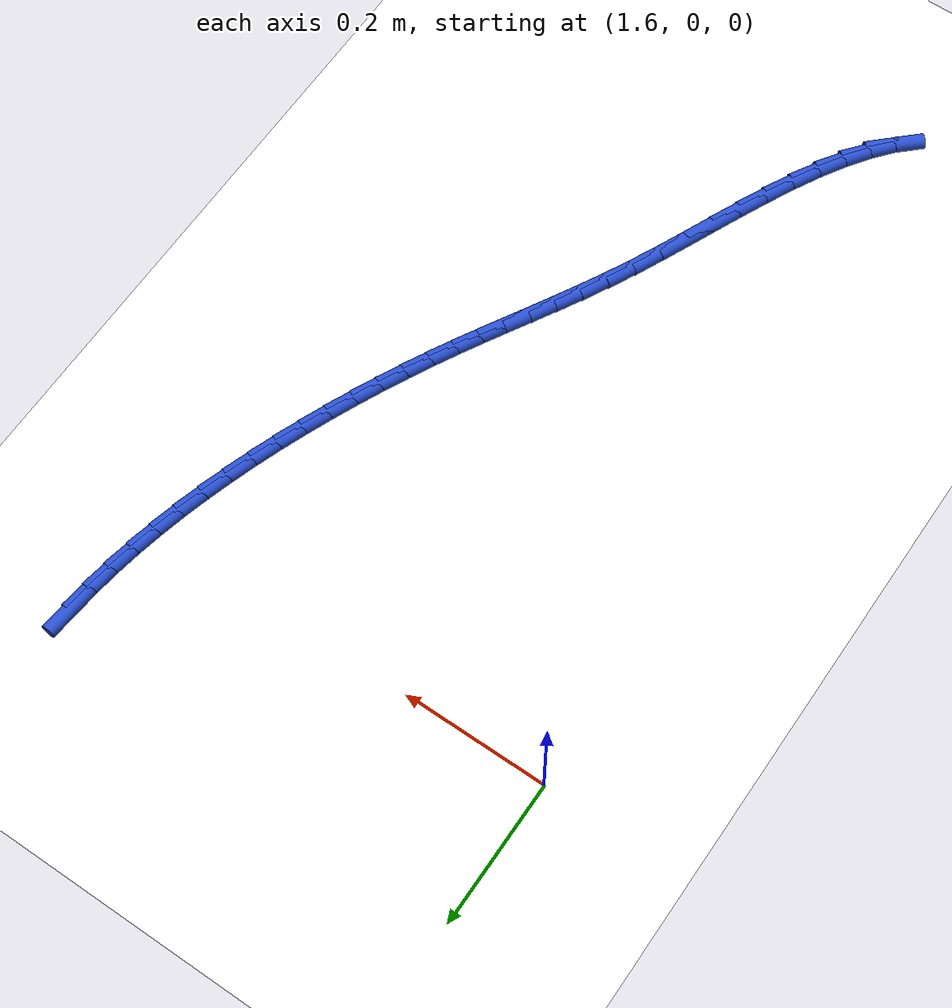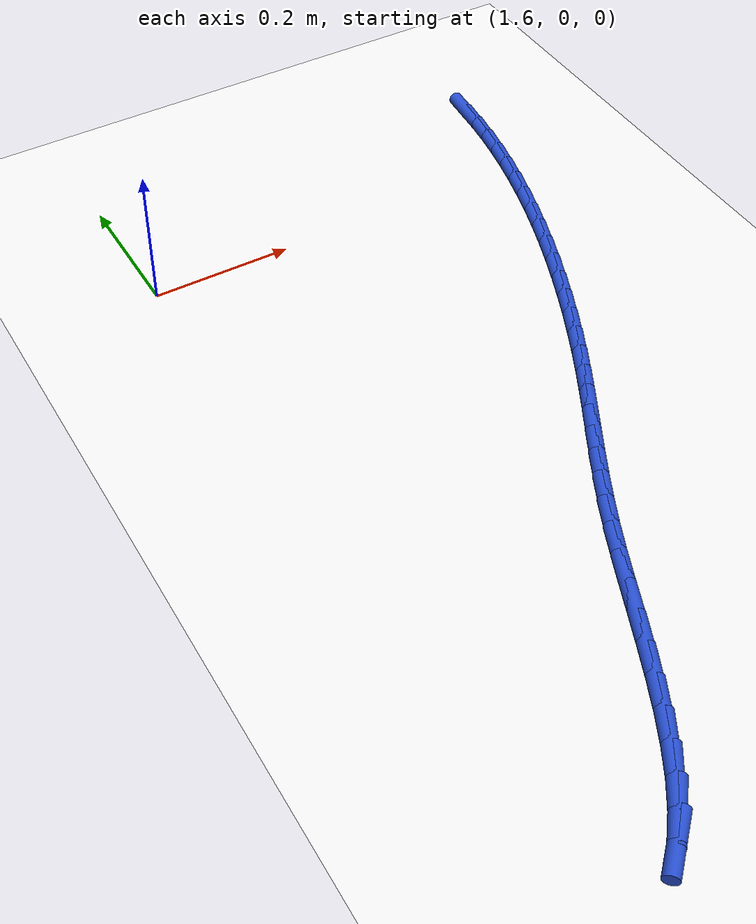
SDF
<sdf version="1.6">
 <world name="default">
  <model name="ground_plane">
   <static>1</static>
   <link name="link">
    <collision name="collision">
     <geometry><plane><normal>0 0 1</normal><size>100 100</size></plane></geometry>
     <surface><friction><ode><mu>100</mu><mu2>50</mu2></ode></friction></surface>
    </collision>
    <visual name="visual">
     <cast_shadows>0</cast_shadows>
     <geometry><plane><normal>0 0 1</normal><size>100 100</size></plane></geometry>
     <material>
      <script><uri>file://media/materials/scripts/gazebo.material</uri><name>Gazebo/WhiteGlow</name></script>
     </material>
    </visual>
   </link>
  </model>
  <model name="line">
   <link name="link_101">
    <pose>2.1959214991359395 0.14096896400948947 0.01 0 1.57 1.481442805108913</pose>
    <collision name="collision">
     <geometry><cylinder><radius>0.01</radius><length>0.08</length></cylinder></geometry>
    </collision>
    <visual name="visual">
     <material>
      <script><name>Gazebo/Blue</name><uri>file://media/materials/scripts/gazebo.material</uri></script>
     </material>
     <geometry><cylinder><radius>0.01</radius><length>0.08</length></cylinder></geometry>
    </visual>
   </link>
   <link name="link_102">
    <pose>2.1928299670929654 0.10646220981072216 0.01 0 1.57 1.4415216518504705</pose>
    <collision name="collision">
     <geometry><cylinder><radius>0.01</radius><length>0.08</length></cylinder></geometry>
    </collision>
    <visual name="visual">
     <material>
      <script><name>Gazebo/Blue</name><uri>file://media/materials/scripts/gazebo.material</uri></script>
     </material>
     <geometry><cylinder><radius>0.01</radius><length>0.08</length></cylinder></geometry>
    </visual>
   </link>
   <link name="link_103">
    <pose>2.188287663085221 0.07152131980105333 0.01 0 1.57 1.4046862894712198</pose>
    <collision name="collision">
     <geometry><cylinder><radius>0.01</radius><length>0.08</length></cylinder></geometry>
    </collision>
    <visual name="visual">
     <material>
      <script><name>Gazebo/Blue</name><uri>file://media/materials/scripts/gazebo.material</uri></script>
     </material>
     <geometry><cylinder><radius>0.01</radius><length>0.08</length></cylinder></geometry>
    </visual>
   </link>
   <link name="link_104">
    <pose>2.182371242356124 0.0362320375079218 0.01 0 1.57 1.3706031849605202</pose>
    <collision name="collision">
     <geometry><cylinder><radius>0.01</radius><length>0.08</length></cylinder></geometry>
    </collision>
    <visual name="visual">
     <material>
      <script><name>Gazebo/Blue</name><uri>file://media/materials/scripts/gazebo.material</uri></script>
     </material>
     <geometry><cylinder><radius>0.01</radius><length>0.08</length></cylinder></geometry>
    </visual>
   </link>
   <link name="link_105">
    <pose>2.1751573601490928 0.0006801064587662843 0.01 0 1.57 1.3389657799014179</pose>
    <collision name="collision">
     <geometry><cylinder><radius>0.01</radius><length>0.08</length></cylinder></geometry>
    </collision>
    <visual name="visual">
     <material>
      <script><name>Gazebo/Blue</name><uri>file://media/materials/scripts/gazebo.material</uri></script>
     </material>
     <geometry><cylinder><radius>0.01</radius><length>0.08</length></cylinder></geometry>
    </visual>
   </link>
   <link name="link_106">
    <pose>2.1667226717075447 -0.035048729818974556 0.01 0 1.57 1.3094945104677678</pose>
    <collision name="collision">
     <geometry><cylinder><radius>0.01</radius><length>0.08</length></cylinder></geometry>
    </collision>
    <visual name="visual">
     <material>
      <script><name>Gazebo/Blue</name><uri>file://media/materials/scripts/gazebo.material</uri></script>
     </material>
     <geometry><cylinder><radius>0.01</radius><length>0.08</length></cylinder></geometry>
    </visual>
   </link>
   <link name="link_107">
    <pose>2.1571438322748984 -0.07086872779786198 0.01 0 1.57 1.281935411652794</pose>
    <collision name="collision">
     <geometry><cylinder><radius>0.01</radius><length>0.08</length></cylinder></geometry>
    </collision>
    <visual name="visual">
     <material>
      <script><name>Gazebo/Blue</name><uri>file://media/materials/scripts/gazebo.material</uri></script>
     </material>
     <geometry><cylinder><radius>0.01</radius><length>0.08</length></cylinder></geometry>
    </visual>
   </link>
   <link name="link_108">
    <pose>2.146497497094571 -0.10669414395045723 0.01 0 1.57 1.2560579110087409</pose>
    <collision name="collision">
     <geometry><cylinder><radius>0.01</radius><length>0.08</length></cylinder></geometry>
    </collision>
    <visual name="visual">
     <material>
      <script><name>Gazebo/Blue</name><uri>file://media/materials/scripts/gazebo.material</uri></script>
     </material>
     <geometry><cylinder><radius>0.01</radius><length>0.08</length></cylinder></geometry>
    </visual>
   </link>
   <link name="link_109">
    <pose>2.13486032140998 -0.14243923474932166 0.01 0 1.57 1.2316522019455278</pose>
    <collision name="collision">
     <geometry><cylinder><radius>0.01</radius><length>0.08</length></cylinder></geometry>
    </collision>
    <visual name="visual">
     <material>
      <script><name>Gazebo/Blue</name><uri>file://media/materials/scripts/gazebo.material</uri></script>
     </material>
     <geometry><cylinder><radius>0.01</radius><length>0.08</length></cylinder></geometry>
    </visual>
   </link>
   <link name="link_110">
    <pose>2.1223089604645455 -0.17801825666701648 0.01 0 1.57 1.20852643306694</pose>
    <collision name="collision">
     <geometry><cylinder><radius>0.01</radius><length>0.08</length></cylinder></geometry>
    </collision>
    <visual name="visual">
     <material>
      <script><name>Gazebo/Blue</name><uri>file://media/materials/scripts/gazebo.material</uri></script>
     </material>
     <geometry><cylinder><radius>0.01</radius><length>0.08</length></cylinder></geometry>
    </visual>
   </link>
   <link name="link_111">
    <pose>2.108920069501683 -0.213345466176103 0.01 0 1.57 1.186503842950509</pose>
    <collision name="collision">
     <geometry><cylinder><radius>0.01</radius><length>0.08</length></cylinder></geometry>
    </collision>
    <visual name="visual">
     <material>
      <script><name>Gazebo/Blue</name><uri>file://media/materials/scripts/gazebo.material</uri></script>
     </material>
     <geometry><cylinder><radius>0.01</radius><length>0.08</length></cylinder></geometry>
    </visual>
   </link>
   <link name="link_112">
    <pose>2.0947703037648115 -0.2483351197491424 0.01 0 1.57 1.1654198954835664</pose>
    <collision name="collision">
     <geometry><cylinder><radius>0.01</radius><length>0.08</length></cylinder></geometry>
    </collision>
    <visual name="visual">
     <material>
      <script><name>Gazebo/Blue</name><uri>file://media/materials/scripts/gazebo.material</uri></script>
     </material>
     <geometry><cylinder><radius>0.01</radius><length>0.08</length></cylinder></geometry>
    </visual>
   </link>
   <link name="link_113">
    <pose>2.07993631849735 -0.28290147385869624 0.01 0 1.57 1.1451194181720037</pose>
    <collision name="collision">
     <geometry><cylinder><radius>0.01</radius><length>0.08</length></cylinder></geometry>
    </collision>
    <visual name="visual">
     <material>
      <script><name>Gazebo/Blue</name><uri>file://media/materials/scripts/gazebo.material</uri></script>
     </material>
     <geometry><cylinder><radius>0.01</radius><length>0.08</length></cylinder></geometry>
    </visual>
   </link>
   <link name="link_114">
    <pose>2.064494768942714 -0.3169587849773255 0.01 0 1.57 1.1254537059307417</pose>
    <collision name="collision">
     <geometry><cylinder><radius>0.01</radius><length>0.08</length></cylinder></geometry>
    </collision>
    <visual name="visual">
     <material>
      <script><name>Gazebo/Blue</name><uri>file://media/materials/scripts/gazebo.material</uri></script>
     </material>
     <geometry><cylinder><radius>0.01</radius><length>0.08</length></cylinder></geometry>
    </visual>
   </link>
   <link name="link_115">
    <pose>2.0485223103443237 -0.3504213095775916 0.01 0 1.57 1.1062775186994769</pose>
    <collision name="collision">
     <geometry><cylinder><radius>0.01</radius><length>0.08</length></cylinder></geometry>
    </collision>
    <visual name="visual">
     <material>
      <script><name>Gazebo/Blue</name><uri>file://media/materials/scripts/gazebo.material</uri></script>
     </material>
     <geometry><cylinder><radius>0.01</radius><length>0.08</length></cylinder></geometry>
    </visual>
   </link>
   <link name="link_116">
    <pose>2.032095597945596 -0.38320330413205506 0.01 0 1.57 1.0874498526542087</pose>
    <collision name="collision">
     <geometry><cylinder><radius>0.01</radius><length>0.08</length></cylinder></geometry>
    </collision>
    <visual name="visual">
     <material>
      <script><name>Gazebo/Blue</name><uri>file://media/materials/scripts/gazebo.material</uri></script>
     </material>
     <geometry><cylinder><radius>0.01</radius><length>0.08</length></cylinder></geometry>
    </visual>
   </link>
   <link name="link_117">
    <pose>2.01529129005863 -0.415219329379415 0.01 0 1.57 1.0704206503422948</pose>
    <collision name="collision">
     <geometry><cylinder><radius>0.01</radius><length>0.08</length></cylinder></geometry>
    </collision>
    <visual name="visual">
     <material>
      <script><name>Gazebo/Blue</name><uri>file://media/materials/scripts/gazebo.material</uri></script>
     </material>
     <geometry><cylinder><radius>0.01</radius><length>0.08</length></cylinder></geometry>
    </visual>
   </link>
   <link name="link_118">
    <pose>1.9981872173547541 -0.4465001879130093 0.01 0 1.57 1.0593901920869722</pose>
    <collision name="collision">
     <geometry><cylinder><radius>0.01</radius><length>0.08</length></cylinder></geometry>
    </collision>
    <visual name="visual">
     <material>
      <script><name>Gazebo/Blue</name><uri>file://media/materials/scripts/gazebo.material</uri></script>
     </material>
     <geometry><cylinder><radius>0.01</radius><length>0.08</length></cylinder></geometry>
    </visual>
   </link>
   <link name="link_119">
    <pose>1.9808641461127376 -0.4773677539063932 0.01 0 1.57 1.0553545079993933</pose>
    <collision name="collision">
     <geometry><cylinder><radius>0.01</radius><length>0.08</length></cylinder></geometry>
    </collision>
    <visual name="visual">
     <material>
      <script><name>Gazebo/Blue</name><uri>file://media/materials/scripts/gazebo.material</uri></script>
     </material>
     <geometry><cylinder><radius>0.01</radius><length>0.08</length></cylinder></geometry>
    </visual>
   </link>
   <link name="link_120">
    <pose>1.9634032946567346 -0.5081887227725702 0.01 0 1.57 1.0583931311949692</pose>
    <collision name="collision">
     <geometry><cylinder><radius>0.01</radius><length>0.08</length></cylinder></geometry>
    </collision>
    <visual name="visual">
     <material>
      <script><name>Gazebo/Blue</name><uri>file://media/materials/scripts/gazebo.material</uri></script>
     </material>
     <geometry><cylinder><radius>0.01</radius><length>0.08</length></cylinder></geometry>
    </visual>
   </link>
   <link name="link_121">
    <pose>1.9458858813108963 -0.5393297899245435 0.01 0 1.57 1.0682562979284733</pose>
    <collision name="collision">
     <geometry><cylinder><radius>0.01</radius><length>0.08</length></cylinder></geometry>
    </collision>
    <visual name="visual">
     <material>
      <script><name>Gazebo/Blue</name><uri>file://media/materials/scripts/gazebo.material</uri></script>
     </material>
     <geometry><cylinder><radius>0.01</radius><length>0.08</length></cylinder></geometry>
    </visual>
   </link>
   <link name="link_122">
    <pose>1.9283931243993753 -0.5711576507753169 0.01 0 1.57 1.084393489758228</pose>
    <collision name="collision">
     <geometry><cylinder><radius>0.01</radius><length>0.08</length></cylinder></geometry>
    </collision>
    <visual name="visual">
     <material>
      <script><name>Gazebo/Blue</name><uri>file://media/materials/scripts/gazebo.material</uri></script>
     </material>
     <geometry><cylinder><radius>0.01</radius><length>0.08</length></cylinder></geometry>
    </visual>
   </link>
   <link name="link_123">
    <pose>1.9110062422463259 -0.6040390007378937 0.01 0 1.57 1.1060060564302092</pose>
    <collision name="collision">
     <geometry><cylinder><radius>0.01</radius><length>0.08</length></cylinder></geometry>
    </collision>
    <visual name="visual">
     <material>
      <script><name>Gazebo/Blue</name><uri>file://media/materials/scripts/gazebo.material</uri></script>
     </material>
     <geometry><cylinder><radius>0.01</radius><length>0.08</length></cylinder></geometry>
    </visual>
   </link>
   <link name="link_124">
    <pose>1.8938064531758991 -0.6383405352252773 0.01 0 1.57 1.131506299801451</pose>
    <collision name="collision">
     <geometry><cylinder><radius>0.01</radius><length>0.08</length></cylinder></geometry>
    </collision>
    <visual name="visual">
     <material>
      <script><name>Gazebo/Blue</name><uri>file://media/materials/scripts/gazebo.material</uri></script>
     </material>
     <geometry><cylinder><radius>0.01</radius><length>0.08</length></cylinder></geometry>
    </visual>
   </link>
   <link name="link_125">
    <pose>1.876864882678274 -0.6743930659023437 0.01 0 1.57 1.1513485978034859</pose>
    <collision name="collision">
     <geometry><cylinder><radius>0.01</radius><length>0.08</length></cylinder></geometry>
    </collision>
    <visual name="visual">
     <material>
      <script><name>Gazebo/Blue</name><uri>file://media/materials/scripts/gazebo.material</uri></script>
     </material>
     <geometry><cylinder><radius>0.01</radius><length>0.08</length></cylinder></geometry>
    </visual>
   </link>
   <link name="link_126">
    <pose>1.8601009305421714 -0.7119879635921209 0.01 0 1.57 1.1598021089294182</pose>
    <collision name="collision">
     <geometry><cylinder><radius>0.01</radius><length>0.08</length></cylinder></geometry>
    </collision>
    <visual name="visual">
     <material>
      <script><name>Gazebo/Blue</name><uri>file://media/materials/scripts/gazebo.material</uri></script>
     </material>
     <geometry><cylinder><radius>0.01</radius><length>0.08</length></cylinder></geometry>
    </visual>
   </link>
   <link name="link_127">
    <pose>1.8433168351575133 -0.7505000471228647 0.01 0 1.57 1.1576728219578267</pose>
    <collision name="collision">
     <geometry><cylinder><radius>0.01</radius><length>0.08</length></cylinder></geometry>
    </collision>
    <visual name="visual">
     <material>
      <script><name>Gazebo/Blue</name><uri>file://media/materials/scripts/gazebo.material</uri></script>
     </material>
     <geometry><cylinder><radius>0.01</radius><length>0.08</length></cylinder></geometry>
    </visual>
   </link>
   <link name="link_128">
    <pose>1.8263118000941994 -0.7892933454180798 0.01 0 1.57 1.1451458298967458</pose>
    <collision name="collision">
     <geometry><cylinder><radius>0.01</radius><length>0.08</length></cylinder></geometry>
    </collision>
    <visual name="visual">
     <material>
      <script><name>Gazebo/Blue</name><uri>file://media/materials/scripts/gazebo.material</uri></script>
     </material>
     <geometry><cylinder><radius>0.01</radius><length>0.08</length></cylinder></geometry>
    </visual>
   </link>
   <link name="link_129">
    <pose>1.80888502892213 -0.8277318874012723 0.01 0 1.57 1.121663897636366</pose>
    <collision name="collision">
     <geometry><cylinder><radius>0.01</radius><length>0.08</length></cylinder></geometry>
    </collision>
    <visual name="visual">
     <material>
      <script><name>Gazebo/Blue</name><uri>file://media/materials/scripts/gazebo.material</uri></script>
     </material>
     <geometry><cylinder><radius>0.01</radius><length>0.08</length></cylinder></geometry>
    </visual>
   </link>
   <link name="link_130">
    <pose>1.790835725211206 -0.8651797019959476 0.01 0 1.57 1.0858940932411305</pose>
    <collision name="collision">
     <geometry><cylinder><radius>0.01</radius><length>0.08</length></cylinder></geometry>
    </collision>
    <visual name="visual">
     <material>
      <script><name>Gazebo/Blue</name><uri>file://media/materials/scripts/gazebo.material</uri></script>
     </material>
     <geometry><cylinder><radius>0.01</radius><length>0.08</length></cylinder></geometry>
    </visual>
   </link>
   <link name="link_131">
    <pose>1.7719630925313286 -0.9010008181256118 0.01 0 1.57 1.0356147610252133</pose>
    <collision name="collision">
     <geometry><cylinder><radius>0.01</radius><length>0.08</length></cylinder></geometry>
    </collision>
    <visual name="visual">
     <material>
      <script><name>Gazebo/Blue</name><uri>file://media/materials/scripts/gazebo.material</uri></script>
     </material>
     <geometry><cylinder><radius>0.01</radius><length>0.08</length></cylinder></geometry>
    </visual>
   </link>
   <link name="link_132">
    <pose>1.752066334452397 -0.9345592647137698 0.01 0 1.57 0.9675558515166849</pose>
    <collision name="collision">
     <geometry><cylinder><radius>0.01</radius><length>0.08</length></cylinder></geometry>
    </collision>
    <visual name="visual">
     <material>
      <script><name>Gazebo/Blue</name><uri>file://media/materials/scripts/gazebo.material</uri></script>
     </material>
     <geometry><cylinder><radius>0.01</radius><length>0.08</length></cylinder></geometry>
    </visual>
   </link>
   <link name="link_133">
    <pose>1.7309446545443128 -0.9652190706839276 0.01 0 1.57 0.8772979666933077</pose>
    <collision name="collision">
     <geometry><cylinder><radius>0.01</radius><length>0.08</length></cylinder></geometry>
    </collision>
    <visual name="visual">
     <material>
      <script><name>Gazebo/Blue</name><uri>file://media/materials/scripts/gazebo.material</uri></script>
     </material>
     <geometry><cylinder><radius>0.01</radius><length>0.08</length></cylinder></geometry>
    </visual>
   </link>
   <link name="link_134">
    <pose>1.708397256376976 -0.9923442649595907 0.01 0 1.57 0.7595320996800067</pose>
    <collision name="collision">
     <geometry><cylinder><radius>0.01</radius><length>0.08</length></cylinder></geometry>
    </collision>
    <visual name="visual">
     <material>
      <script><name>Gazebo/Blue</name><uri>file://media/materials/scripts/gazebo.material</uri></script>
     </material>
     <geometry><cylinder><radius>0.01</radius><length>0.08</length></cylinder></geometry>
    </visual>
   </link>
  </model>
 </world>
</sdf>
